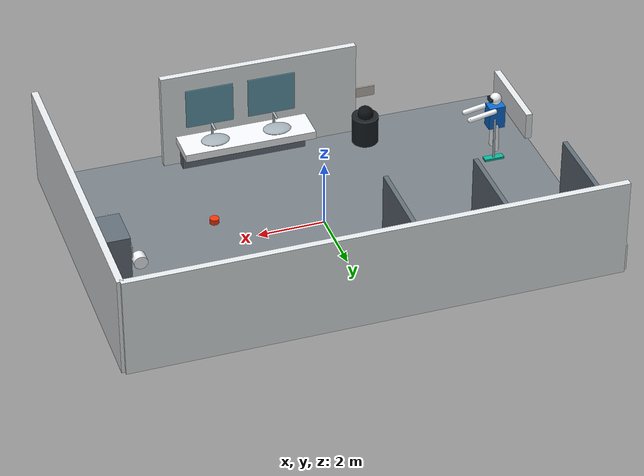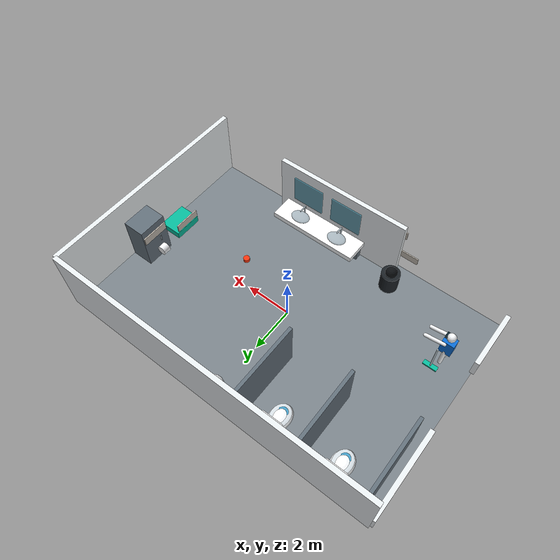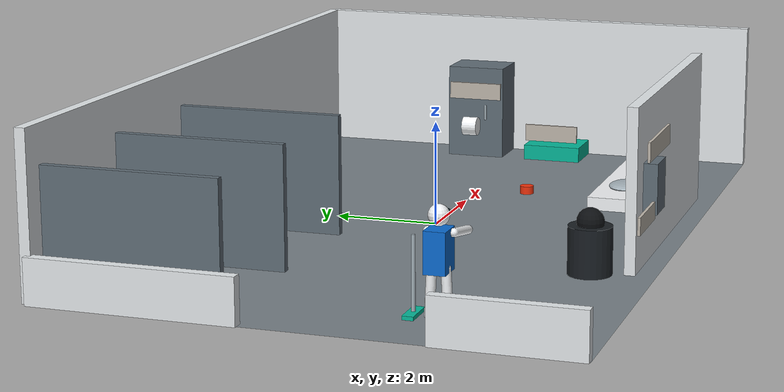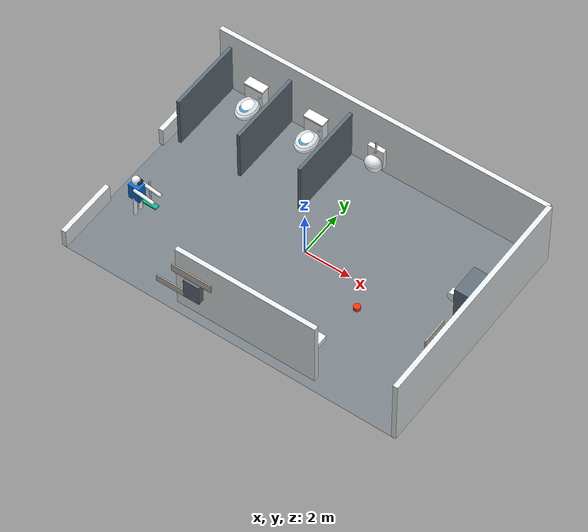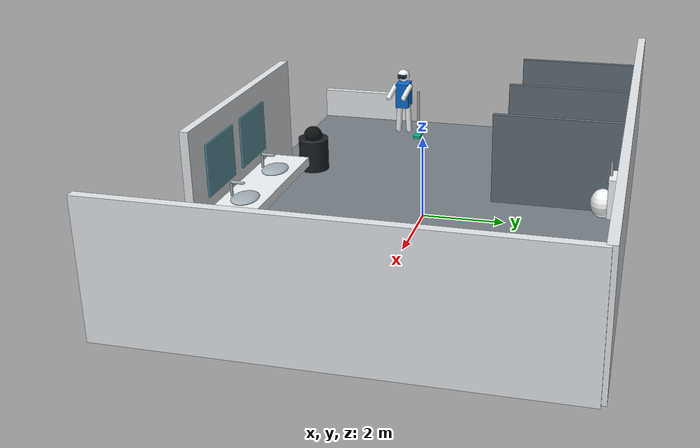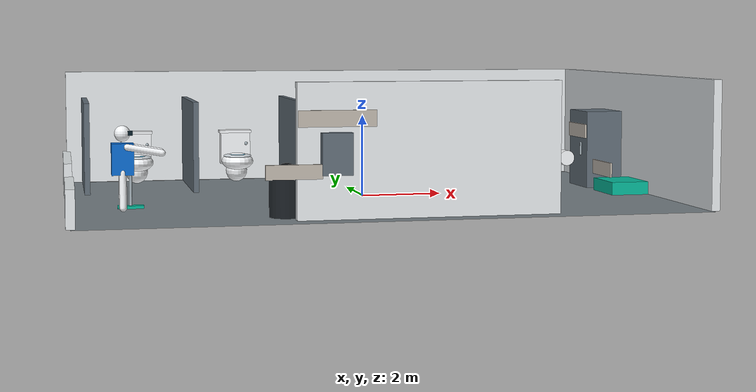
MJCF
<mujoco model="public_restroom_humanoid_cleaning_v4_4">
  <compiler angle="degree"/>
  <option timestep="0.01" gravity="0 0 -9.81"/>
  <statistic center="0 0 1.0" extent="8.4"/>
  <visual>
    <global offwidth="960" offheight="540" azimuth="140" elevation="-58"/>
    <headlight ambient="0.30 0.30 0.30" diffuse="0.28 0.28 0.28" specular="0.03 0.03 0.03"/>
  </visual>
  <default>
    <geom contype="1" conaffinity="1" friction="0.9 0.02 0.002"/>
  </default>

  <asset>
    <texture name="tile" type="2d" builtin="checker" rgb1="0.28 0.32 0.35" rgb2="0.66 0.69 0.71" width="256" height="256"/>
    <texture name="cleaning_label" type="2d" file="assets/cleaning_supplies.png"/>
    <texture name="charging_label" type="2d" file="assets/charging_station.png"/>
    <texture name="garbage_label" type="2d" file="assets/garbage.png"/>
    <texture name="paper_label" type="2d" file="assets/paper_towels.png"/>
    <material name="floor" texture="tile" texrepeat="12 8" reflectance="0" specular="0" shininess="0"/>
    <material name="wall" rgba="0.90 0.92 0.93 1"/>
    <material name="partition" rgba="0.38 0.43 0.47 1"/>
    <material name="ceramic" rgba="0.96 0.97 0.98 1" specular="0.55" shininess="0.55"/>
    <material name="seat" rgba="0.83 0.86 0.88 1" specular="0.25"/>
    <material name="water" rgba="0.27 0.62 0.78 1" reflectance="0.18"/>
    <material name="steel" rgba="0.65 0.70 0.73 1" specular="0.70" shininess="0.70"/>
    <material name="mirror" rgba="0.25 0.55 0.64 0.72" reflectance="0.45"/>
    <material name="robot" rgba="0.04 0.42 0.82 1"/>
    <material name="accent" rgba="0.02 0.72 0.60 1"/>
    <material name="hazard" rgba="0.95 0.20 0.05 1" emission="0.12"/>
    <material name="cleaning_sign" texture="cleaning_label" texuniform="false" specular="0"/>
    <material name="charging_sign" texture="charging_label" texuniform="false" specular="0"/>
    <material name="garbage_sign" texture="garbage_label" texuniform="false" specular="0"/>
    <material name="paper_sign" texture="paper_label" texuniform="false" specular="0"/>
  </asset>

  <worldbody>
    <light pos="-2 -2 7" dir="0.15 0.1 -1" diffuse="0.30 0.30 0.30" specular="0.03 0.03 0.03"/>
    <light pos="5 3 6" dir="-0.2 -0.1 -1" diffuse="0.16 0.16 0.16" specular="0.02 0.02 0.02"/>
    <geom name="restroom_floor" type="plane" size="7.2 4.8 0.1" material="floor"/>

    <!-- Fixed cameras reproduce the four audit angles identified in the review. -->
    <!-- Wide cameras are far enough back to keep the complete room visible in
         MuJoCo's narrow center viewport when both side-control panels are open. -->
    <camera name="top_overview" pos="-18 -18 22.5" fovy="54" xyaxes="0.707107 -0.707107 0 0.468293 0.468293 0.749269"/>
    <camera name="fixture_cleaning" pos="-18 -18 22.5" fovy="54" xyaxes="0.707107 -0.707107 0 0.468293 0.468293 0.749269"/>
    <camera name="toilet_cleaning" pos="-18 -18 18" fovy="58" xyaxes="0.707107 -0.707107 0 0.397457 0.397457 0.827077"/>
    <camera name="floor_cleaning" pos="-18 -18 18" fovy="58" xyaxes="0.707107 -0.707107 0 0.397457 0.397457 0.827077"/>
    <!-- This camera is behind and above the robot while it faces the sinks.
         The robot, both arms, sink counter, and mirrors remain in front of it. -->
    <camera name="sink_cleaning" pos="1.2 3.5 7.5" fovy="55" xyaxes="-1 0 0 0 -0.674269 0.738485"/>

    <!-- Building shell. The entry wall is intentionally low so the whole room stays visible. -->
    <geom name="back_building_wall" type="box" pos="0 4.8 1.5" size="7.2 0.10 1.5" material="wall"/>
    <geom name="right_building_wall" type="box" pos="7.2 0 1.5" size="0.10 4.8 1.5" material="wall"/>
    <!-- Original doorway orientation, with both wall sections lowered for the audit view. -->
    <geom name="low_door_wall_upper" type="box" pos="-7.2 2.9 0.42" size="0.10 1.9 0.42" material="wall"/>
    <geom name="low_door_wall_lower" type="box" pos="-7.2 -3.5 0.42" size="0.10 1.3 0.42" material="wall"/>
    <geom name="mirror_backing_wall" type="box" pos="0.6 -4.34 1.5" size="3.0 0.10 1.5" material="wall"/>

    <!-- Open-front toilet and urinal bays. The two blue-marked door panels are removed. -->
    <geom name="moved_outer_privacy_wall" type="box" pos="-6.72 3.12 1.15" size="0.07 1.65 1.15" material="partition"/>
    <geom name="toilet_divider_wall" type="box" pos="-4.00 3.12 1.15" size="0.07 1.65 1.15" material="partition"/>
    <geom name="toilet_urinal_divider" type="box" pos="-1.30 3.12 1.15" size="0.07 1.65 1.15" material="partition"/>

    <body name="toilet_1" pos="-5.35 4.05 0">
      <geom name="toilet_1_pedestal" type="ellipsoid" pos="0 0.02 0.31" size="0.29 0.37 0.31" material="ceramic"/>
      <geom name="toilet_1_bowl" type="ellipsoid" pos="0 -0.20 0.57" size="0.43 0.58 0.23" material="ceramic"/>
      <geom name="toilet_1_seat" type="ellipsoid" pos="0 -0.22 0.72" size="0.38 0.50 0.055" material="seat"/>
      <geom name="toilet_1_water" type="ellipsoid" pos="0 -0.25 0.755" size="0.25 0.34 0.018" material="water" contype="0" conaffinity="0"/>
      <geom name="toilet_1_tank" type="box" pos="0 0.37 0.90" size="0.40 0.18 0.43" material="ceramic"/>
      <geom name="toilet_1_lid" type="box" pos="0 0.37 1.35" size="0.43 0.20 0.035" material="ceramic"/>
      <geom name="toilet_1_flush" type="sphere" pos="0.29 0.16 1.02" size="0.045" material="steel"/>
    </body>

    <body name="toilet_2" pos="-2.65 4.05 0">
      <geom name="toilet_2_pedestal" type="ellipsoid" pos="0 0.02 0.31" size="0.29 0.37 0.31" material="ceramic"/>
      <geom name="toilet_2_bowl" type="ellipsoid" pos="0 -0.20 0.57" size="0.43 0.58 0.23" material="ceramic"/>
      <geom name="toilet_2_seat" type="ellipsoid" pos="0 -0.22 0.72" size="0.38 0.50 0.055" material="seat"/>
      <geom name="toilet_2_water" type="ellipsoid" pos="0 -0.25 0.755" size="0.25 0.34 0.018" material="water" contype="0" conaffinity="0"/>
      <geom name="toilet_2_tank" type="box" pos="0 0.37 0.90" size="0.40 0.18 0.43" material="ceramic"/>
      <geom name="toilet_2_lid" type="box" pos="0 0.37 1.35" size="0.43 0.20 0.035" material="ceramic"/>
      <geom name="toilet_2_flush" type="sphere" pos="0.29 0.16 1.02" size="0.045" material="steel"/>
    </body>

    <!-- The toilets and urinal are moved together toward the brown-marked back zone. -->
    <body name="urinal" pos="0.00 4.52 0">
      <geom name="urinal_back" type="box" pos="0 0 0.96" size="0.34 0.10 0.48" material="ceramic"/>
      <geom name="urinal_bowl" type="ellipsoid" pos="0 -0.22 0.73" size="0.36 0.29 0.34" material="ceramic"/>
      <geom name="urinal_water" type="ellipsoid" pos="0 -0.40 0.72" size="0.22 0.10 0.12" material="water" contype="0" conaffinity="0"/>
      <geom name="urinal_flush_pipe" type="cylinder" pos="0 -0.06 1.52" size="0.035 0.25" material="steel"/>
      <geom name="urinal_flush_valve" type="sphere" pos="0 -0.06 1.27" size="0.075" material="steel"/>
    </body>

    <!-- Two sinks, faucets, mirrors, and the solid wall behind the mirrors. -->
    <geom name="sink_counter" type="box" pos="1.20 -3.70 0.84" size="2.00 0.52 0.12" material="ceramic"/>
    <geom name="sink_cabinet" type="box" pos="1.20 -4.05 0.42" size="1.90 0.14 0.42" material="partition"/>
    <geom name="sink_1" type="ellipsoid" pos="0.25 -3.68 0.98" size="0.43 0.32 0.08" material="steel"/>
    <geom name="sink_2" type="ellipsoid" pos="2.15 -3.68 0.98" size="0.43 0.32 0.08" material="steel"/>
    <geom name="faucet_1_post" type="cylinder" pos="0.25 -4.00 1.18" size="0.035 0.18" material="steel"/>
    <geom name="faucet_1_spout" type="capsule" fromto="0.25 -4.00 1.34 0.25 -3.70 1.34" size="0.035" material="steel"/>
    <geom name="faucet_2_post" type="cylinder" pos="2.15 -4.00 1.18" size="0.035 0.18" material="steel"/>
    <geom name="faucet_2_spout" type="capsule" fromto="2.15 -4.00 1.34 2.15 -3.70 1.34" size="0.035" material="steel"/>
    <geom name="mirror_1" type="box" pos="0.25 -4.22 1.85" size="0.72 0.025 0.62" material="mirror" contype="0" conaffinity="0"/>
    <geom name="mirror_2" type="box" pos="2.15 -4.22 1.85" size="0.72 0.025 0.62" material="mirror" contype="0" conaffinity="0"/>

    <!-- Clearly labeled waste and paper-towel fixtures. -->
    <geom name="trash_bin" type="cylinder" pos="-2.50 -3.65 0.44" size="0.40 0.44" rgba="0.10 0.12 0.14 1"/>
    <geom name="garbage_label" type="box" pos="-2.50 -4.64 1.08" size="0.62 0.025 0.16" material="garbage_sign" contype="0" conaffinity="0"/>
    <geom name="paper_towel_dispenser" type="box" pos="-1.55 -4.55 1.45" size="0.34 0.15 0.46" material="partition"/>
    <geom name="paper_towel_label" type="box" pos="-1.55 -4.64 2.22" size="0.86 0.025 0.18" material="paper_sign" contype="0" conaffinity="0"/>

    <!-- Cabinet and charging station moved to the green-marked right wall. -->
    <geom name="supply_cabinet" type="box" pos="6.60 1.05 1.00" size="0.48 0.62 1.00" material="partition"/>
    <geom name="supply_handle" type="capsule" fromto="6.10 0.82 0.85 6.10 0.82 1.15" size="0.025" material="steel" contype="0" conaffinity="0"/>
    <geom name="cleaning_supplies_label" type="box" pos="6.095 1.05 1.48" size="0.025 0.58 0.18" material="cleaning_sign" contype="0" conaffinity="0"/>
    <geom name="dock" type="box" pos="6.60 -0.70 0.16" size="0.48 0.62 0.16" material="accent"/>
    <geom name="charging_station_label" type="box" pos="6.095 -0.70 0.62" size="0.025 0.58 0.18" material="charging_sign" contype="0" conaffinity="0"/>

    <geom name="hazard_marker" type="cylinder" pos="3.0 -1.0 0.08" size="0.14 0.08" material="hazard"/>

    <body name="cleaning_humanoid" mocap="true" pos="-6.0 -2.0 0">
      <geom type="box" pos="0 0 1.20" size="0.25 0.19 0.36" material="robot"/>
      <geom type="sphere" pos="0 0 1.78" size="0.18" material="ceramic"/>
      <geom type="box" pos="0.16 0 1.79" size="0.07 0.12 0.05" rgba="0.03 0.12 0.16 1"/>
      <geom type="capsule" fromto="0 -0.12 0.91 0 -0.16 0.10" size="0.085" material="ceramic"/>
      <geom type="capsule" fromto="0 0.12 0.91 0 0.16 0.10" size="0.085" material="ceramic"/>
    </body>

    <!-- Independently animated arms reach toward the sink and mirrors. -->
    <body name="left_arm" mocap="true" pos="-5.90 -2.22 1.48">
      <geom type="capsule" fromto="0 0 0 0.78 0 -0.14" size="0.075" material="ceramic" contype="0" conaffinity="0"/>
    </body>
    <body name="right_arm" mocap="true" pos="-5.90 -1.78 1.48">
      <geom type="capsule" fromto="0 0 0 0.78 0 -0.14" size="0.075" material="ceramic" contype="0" conaffinity="0"/>
    </body>

    <body name="cleaning_tool" mocap="true" pos="-5.8 -1.5 0.72">
      <geom type="cylinder" size="0.035 0.65" material="steel" contype="0" conaffinity="0"/>
      <geom type="box" pos="0 0 -0.68" size="0.30 0.10 0.035" material="accent" contype="0" conaffinity="0"/>
    </body>
    <body name="paper_refill" mocap="true" pos="5.75 1.05 0.75">
      <geom type="cylinder" size="0.20 0.16" euler="90 0 0" material="ceramic"/>
    </body>
    <body name="trash_bag" mocap="true" pos="-2.50 -3.65 0.95">
      <geom type="sphere" size="0.25" rgba="0.05 0.06 0.07 1"/>
    </body>
  </worldbody>
</mujoco>
